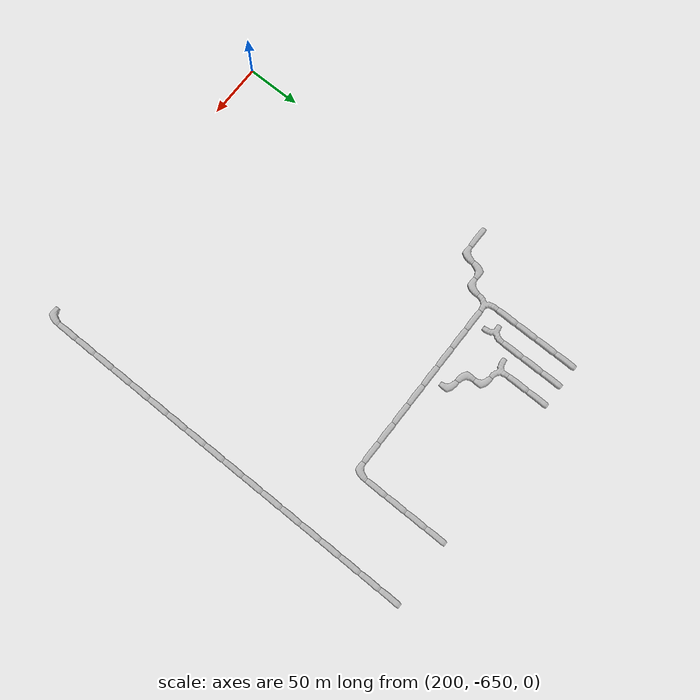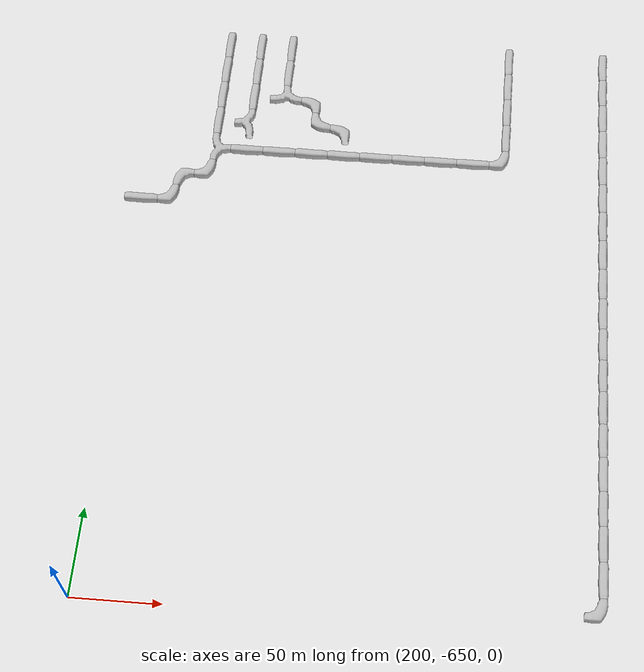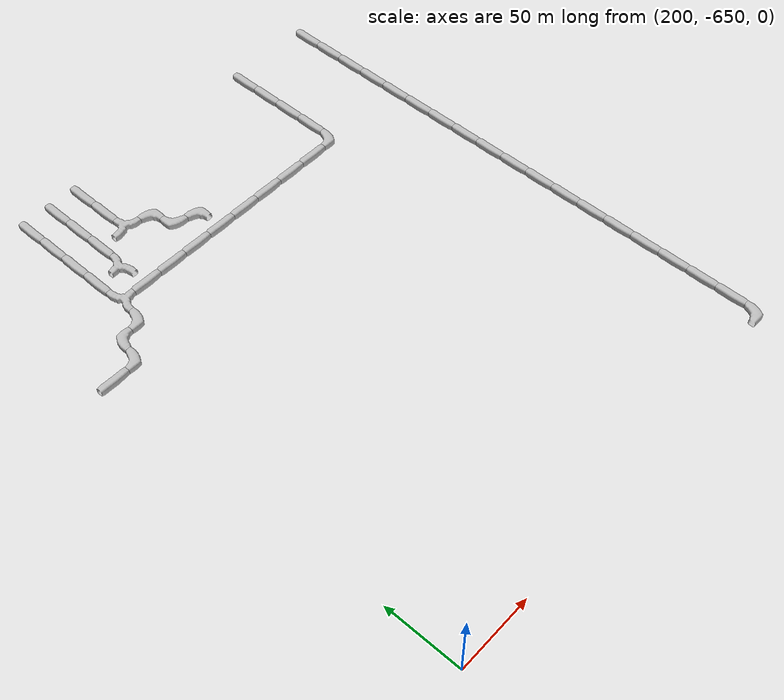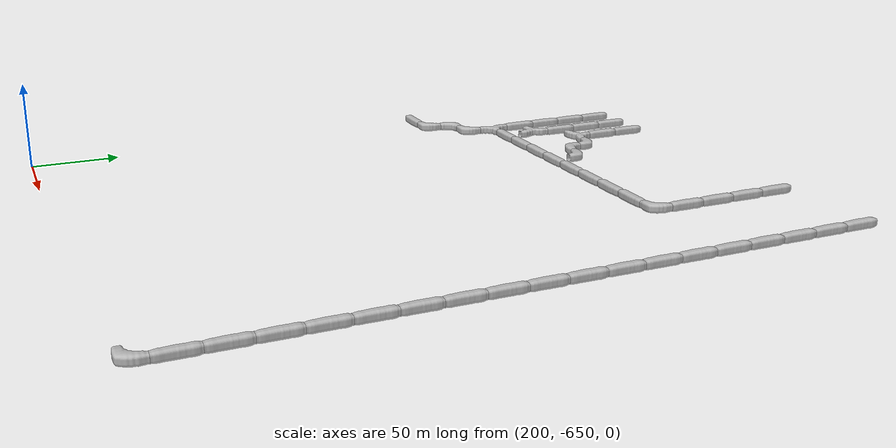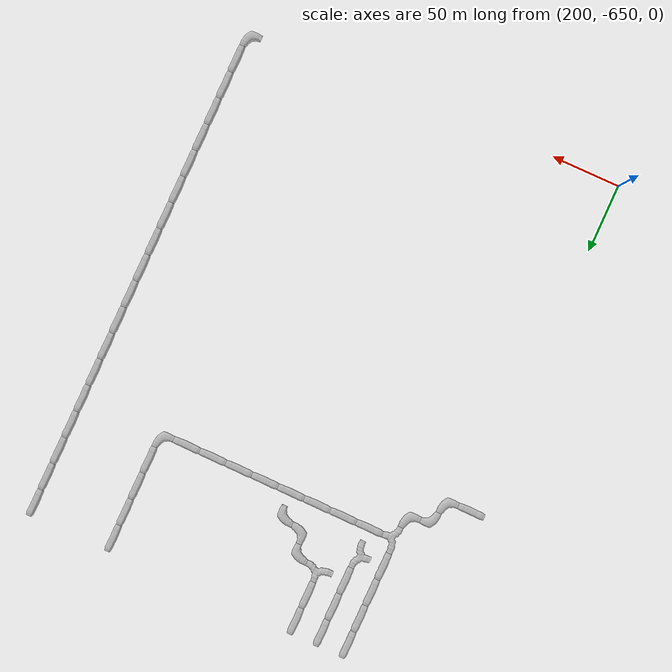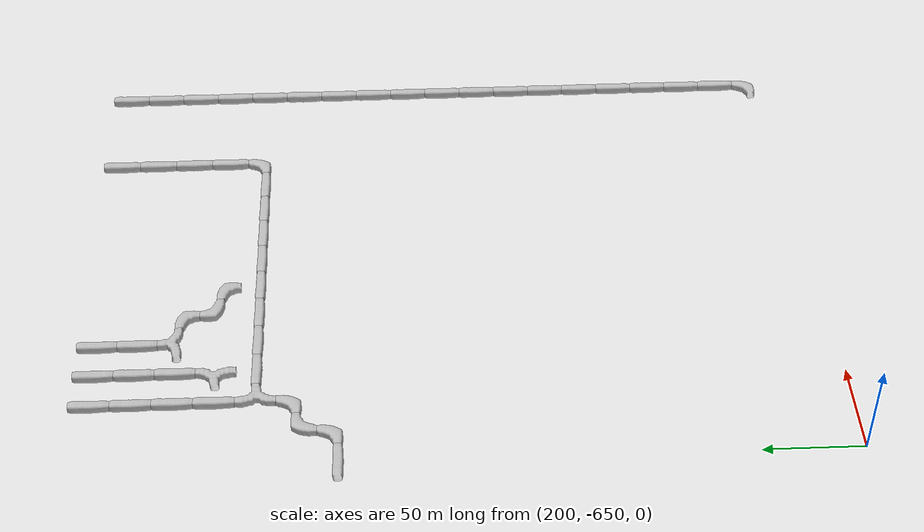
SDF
<sdf version="1.6">
 <world name="cave_4000_0">
  <include>
   <static>true</static>
   <name>cave_24_-14</name>
   <pose>480 -280 0 0 0 0.0</pose>
   <uri>model://cave_straight_20m</uri>
  </include>
  <include>
   <static>true</static>
   <name>cave_24_-15</name>
   <pose>480 -300 0 0 0 0.0</pose>
   <uri>model://cave_straight_20m</uri>
  </include>
  <include>
   <static>true</static>
   <name>cave_24_-16</name>
   <pose>480 -320 0 0 0 0.0</pose>
   <uri>model://cave_straight_20m</uri>
  </include>
  <include>
   <static>true</static>
   <name>cave_24_-17</name>
   <pose>480 -340 0 0 0 0.0</pose>
   <uri>model://cave_straight_20m</uri>
  </include>
  <include>
   <static>true</static>
   <name>cave_24_-18</name>
   <pose>480 -360 0 0 0 0.0</pose>
   <uri>model://cave_straight_20m</uri>
  </include>
  <include>
   <static>true</static>
   <name>cave_24_-19</name>
   <pose>480 -380 0 0 0 0.0</pose>
   <uri>model://cave_straight_20m</uri>
  </include>
  <include>
   <static>true</static>
   <name>cave_24_-20</name>
   <pose>480 -400 0 0 0 0.0</pose>
   <uri>model://cave_straight_20m</uri>
  </include>
  <include>
   <static>true</static>
   <name>cave_24_-21</name>
   <pose>480 -420 0 0 0 0.0</pose>
   <uri>model://cave_straight_20m</uri>
  </include>
  <include>
   <static>true</static>
   <name>cave_24_-22</name>
   <pose>480 -440 0 0 0 0.0</pose>
   <uri>model://cave_straight_20m</uri>
  </include>
  <include>
   <static>true</static>
   <name>cave_24_-23</name>
   <pose>480 -460 0 0 0 0.0</pose>
   <uri>model://cave_straight_20m</uri>
  </include>
  <include>
   <static>true</static>
   <name>cave_24_-24</name>
   <pose>480 -480 0 0 0 0.0</pose>
   <uri>model://cave_straight_20m</uri>
  </include>
  <include>
   <static>true</static>
   <name>cave_24_-25</name>
   <pose>480 -500 0 0 0 0.0</pose>
   <uri>model://cave_straight_20m</uri>
  </include>
  <include>
   <static>true</static>
   <name>cave_24_-26</name>
   <pose>480 -520 0 0 0 0.0</pose>
   <uri>model://cave_straight_20m</uri>
  </include>
  <include>
   <static>true</static>
   <name>cave_24_-27</name>
   <pose>480 -540 0 0 0 0.0</pose>
   <uri>model://cave_straight_20m</uri>
  </include>
  <include>
   <static>true</static>
   <name>cave_24_-28</name>
   <pose>480 -560 0 0 0 0.0</pose>
   <uri>model://cave_straight_20m</uri>
  </include>
  <include>
   <static>true</static>
   <name>cave_24_-29</name>
   <pose>480 -580 0 0 0 0.0</pose>
   <uri>model://cave_straight_20m</uri>
  </include>
  <include>
   <static>true</static>
   <name>cave_24_-30</name>
   <pose>480 -600 0 0 0 0.0</pose>
   <uri>model://cave_straight_20m</uri>
  </include>
  <include>
   <static>true</static>
   <name>cave_24_-31</name>
   <pose>480 -620 0 0 0 0.0</pose>
   <uri>model://cave_straight_20m</uri>
  </include>
  <include>
   <static>true</static>
   <name>cave_24_-32</name>
   <pose>480 -640 0 0 0 1.5707963267948966</pose>
   <uri>model://cave_L_20m</uri>
  </include>
  <include>
   <static>true</static>
   <name>cave_21_-14</name>
   <pose>420 -280 0 0 0 0.0</pose>
   <uri>model://cave_straight_20m</uri>
  </include>
  <include>
   <static>true</static>
   <name>cave_21_-15</name>
   <pose>420 -300 0 0 0 0.0</pose>
   <uri>model://cave_straight_20m</uri>
  </include>
  <include>
   <static>true</static>
   <name>cave_21_-16</name>
   <pose>420 -320 0 0 0 0.0</pose>
   <uri>model://cave_straight_20m</uri>
  </include>
  <include>
   <static>true</static>
   <name>cave_21_-17</name>
   <pose>420 -340 0 0 0 0.0</pose>
   <uri>model://cave_straight_20m</uri>
  </include>
  <include>
   <static>true</static>
   <name>cave_21_-18</name>
   <pose>420 -360 0 0 0 1.5707963267948966</pose>
   <uri>model://cave_L_20m</uri>
  </include>
  <include>
   <static>true</static>
   <name>cave_20_-18</name>
   <pose>400 -360 0 0 0 1.5707963267948966</pose>
   <uri>model://cave_straight_20m</uri>
  </include>
  <include>
   <static>true</static>
   <name>cave_19_-18</name>
   <pose>380 -360 0 0 0 1.5707963267948966</pose>
   <uri>model://cave_straight_20m</uri>
  </include>
  <include>
   <static>true</static>
   <name>cave_18_-18</name>
   <pose>360 -360 0 0 0 1.5707963267948966</pose>
   <uri>model://cave_straight_20m</uri>
  </include>
  <include>
   <static>true</static>
   <name>cave_17_-18</name>
   <pose>340 -360 0 0 0 1.5707963267948966</pose>
   <uri>model://cave_straight_20m</uri>
  </include>
  <include>
   <static>true</static>
   <name>cave_16_-18</name>
   <pose>320 -360 0 0 0 1.5707963267948966</pose>
   <uri>model://cave_straight_20m</uri>
  </include>
  <include>
   <static>true</static>
   <name>cave_15_-18</name>
   <pose>300 -360 0 0 0 1.5707963267948966</pose>
   <uri>model://cave_straight_20m</uri>
  </include>
  <include>
   <static>true</static>
   <name>cave_14_-18</name>
   <pose>280 -360 0 0 0 1.5707963267948966</pose>
   <uri>model://cave_straight_20m</uri>
  </include>
  <include>
   <static>true</static>
   <name>cave_13_-18</name>
   <pose>260 -360 0 0 0 1.5707963267948966</pose>
   <uri>model://cave_straight_20m</uri>
  </include>
  <include>
   <static>true</static>
   <name>cave_12_-18</name>
   <pose>240 -360 0 0 0 -1.5707963267948966</pose>
   <uri>model://cave_3way_20m</uri>
  </include>
  <include>
   <static>true</static>
   <name>cave_12_-19</name>
   <pose>240 -380 0 0 0 1.5707963267948966</pose>
   <uri>model://cave_L_20m</uri>
  </include>
  <include>
   <static>true</static>
   <name>cave_11_-19</name>
   <pose>220 -380 0 0 0 -1.5707963267948966</pose>
   <uri>model://cave_L_20m</uri>
  </include>
  <include>
   <static>true</static>
   <name>cave_11_-20</name>
   <pose>220 -400 0 0 0 1.5707963267948966</pose>
   <uri>model://cave_L_20m</uri>
  </include>
  <include>
   <static>true</static>
   <name>cave_10_-20</name>
   <pose>200 -400 0 0 0 1.5707963267948966</pose>
   <uri>model://cave_straight_20m</uri>
  </include>
  <include>
   <static>true</static>
   <name>cave_12_-17</name>
   <pose>240 -340 0 0 0 0.0</pose>
   <uri>model://cave_straight_20m</uri>
  </include>
  <include>
   <static>true</static>
   <name>cave_12_-16</name>
   <pose>240 -320 0 0 0 0.0</pose>
   <uri>model://cave_straight_20m</uri>
  </include>
  <include>
   <static>true</static>
   <name>cave_12_-15</name>
   <pose>240 -300 0 0 0 0.0</pose>
   <uri>model://cave_straight_20m</uri>
  </include>
  <include>
   <static>true</static>
   <name>cave_12_-14</name>
   <pose>240 -280 0 0 0 0.0</pose>
   <uri>model://cave_straight_20m</uri>
  </include>
  <include>
   <static>true</static>
   <name>cave_14_-14</name>
   <pose>280 -280 0 0 0 0.0</pose>
   <uri>model://cave_straight_20m</uri>
  </include>
  <include>
   <static>true</static>
   <name>cave_14_-15</name>
   <pose>280 -300 0 0 0 0.0</pose>
   <uri>model://cave_straight_20m</uri>
  </include>
  <include>
   <static>true</static>
   <name>cave_14_-16</name>
   <pose>280 -320 0 0 0 0.0</pose>
   <uri>model://cave_3way_20m</uri>
  </include>
  <include>
   <static>true</static>
   <name>cave_15_-16</name>
   <pose>300 -320 0 0 0 3.141592653589793</pose>
   <uri>model://cave_L_20m</uri>
  </include>
  <include>
   <static>true</static>
   <name>cave_15_-17</name>
   <pose>300 -340 0 0 0 0.0</pose>
   <uri>model://cave_L_20m</uri>
  </include>
  <include>
   <static>true</static>
   <name>cave_16_-17</name>
   <pose>320 -340 0 0 0 3.141592653589793</pose>
   <uri>model://cave_L_20m</uri>
  </include>
  <include>
   <static>true</static>
   <name>cave_13_-14</name>
   <pose>260 -280 0 0 0 0.0</pose>
   <uri>model://cave_straight_20m</uri>
  </include>
  <include>
   <static>true</static>
   <name>cave_13_-15</name>
   <pose>260 -300 0 0 0 0.0</pose>
   <uri>model://cave_straight_20m</uri>
  </include>
  <include>
   <static>true</static>
   <name>cave_13_-16</name>
   <pose>260 -320 0 0 0 0.0</pose>
   <uri>model://cave_straight_20m</uri>
  </include>
  <include>
   <static>true</static>
   <name>cave_13_-17</name>
   <pose>260 -340 0 0 0 1.5707963267948966</pose>
   <uri>model://cave_3way_20m</uri>
  </include>
 </world>
</sdf>
